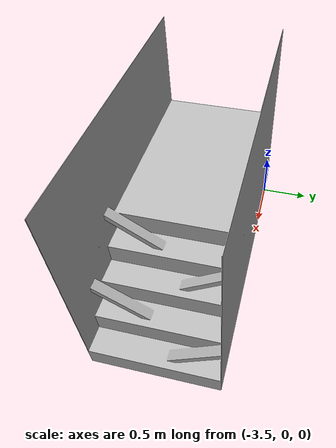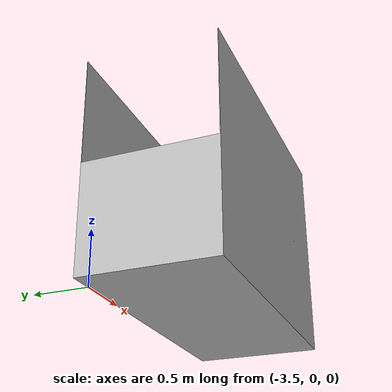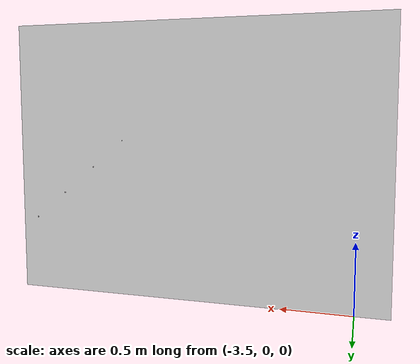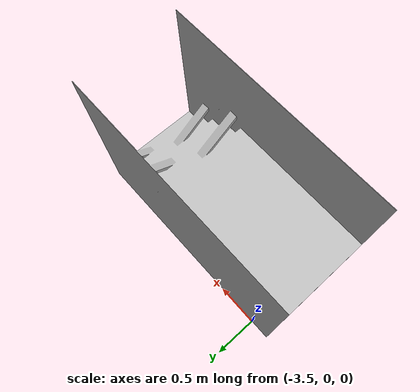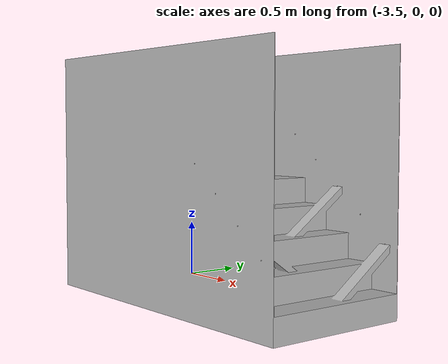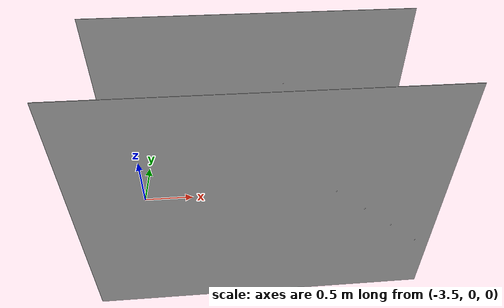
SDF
<?xml version="1.0" ?>
<sdf version="1.6">
  <model name="stairs_40deg_4deb">
    <static>true</static>
    <pose>-1 0 0 1.5708 0 0</pose>
    <link name="link">
      <collision name="collision">
        <geometry>
          <mesh>
            <scale>0.01 0.01 0.01</scale>
            <uri>model://stairs_40deg_4deb/Stairs_40deg_4deb.dae</uri>
          </mesh>
        </geometry>
        <surface>
          <friction>
            <ode>
              <mu>100</mu>
              <mu2>50</mu2>
            </ode>
          </friction>
        </surface>
      </collision>
      <visual name="visual">
        <geometry>
          <mesh>
            <scale>0.01 0.01 0.01</scale>
            <uri>model://stairs_40deg_4deb/Stairs_40deg_4deb.dae</uri>
          </mesh>
        </geometry>
      </visual>
    </link>
  </model>
</sdf>
